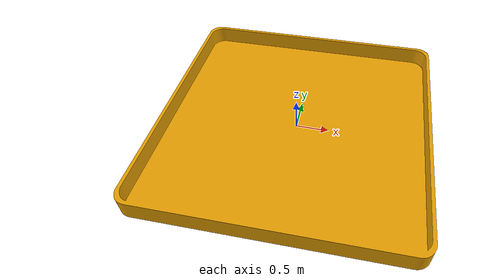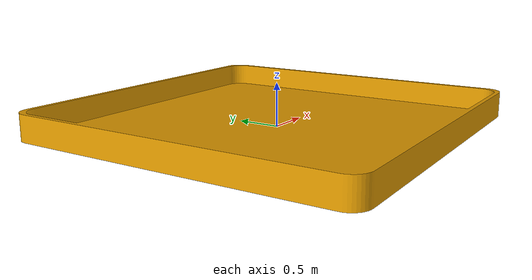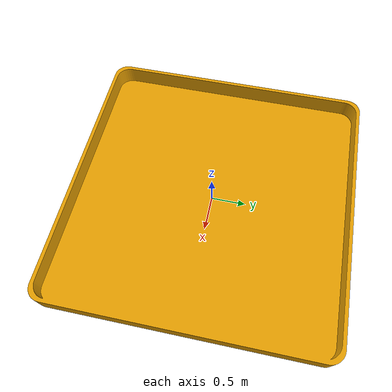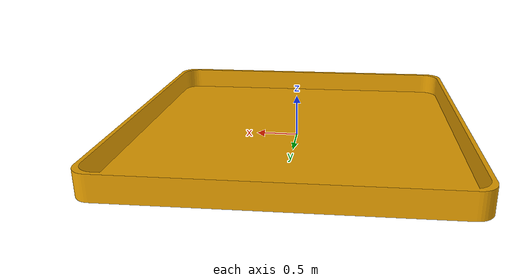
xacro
<?xml version="1.0"?>
<robot name="arena" xmlns:xacro="http://www.ros.org/wiki/xacro">
    <!-- Base Link -->
    <macro name="box_inertia" params="m x y z">
        <inertia ixx="${m*(y*y+z*z)/12}" ixy = "0" ixz = "0" iyy="${m*(x*x+z*z)/12}" iyz = "0" izz="${m*(x*x+z*z)/12}" />
      </macro>

    <link name="arena_link">
        <collision>
            <origin xyz="0 0 0" rpy="0 0 -${3*pi/2}" />
            <geometry>
                <mesh filename="package://hero_gazebo/worlds/models/arena.dae" scale="0.1 0.1 0.1"/>
            </geometry>
        </collision>

        <visual>
            <origin xyz="0 0 0" rpy="0 0 -${3*pi/2}" />
            <geometry>
                <mesh filename="package://hero_gazebo/worlds/models/arena.dae" scale="0.1 0.1 0.1"/>
            </geometry>
        </visual>

        <inertial>
            <origin xyz="0 0 0" rpy="0 0 0" />
            <mass value="100" />
            <xacro:box_inertia m="100.0" x="4.00" y="4.00" z="0.30"/>
        </inertial>
    </link>
    <gazebo reference="arena_link">
        <static>true</static>
        <gravity>false</gravity>
        <selfCollide>false</selfCollide>
      </gazebo>

</robot>
